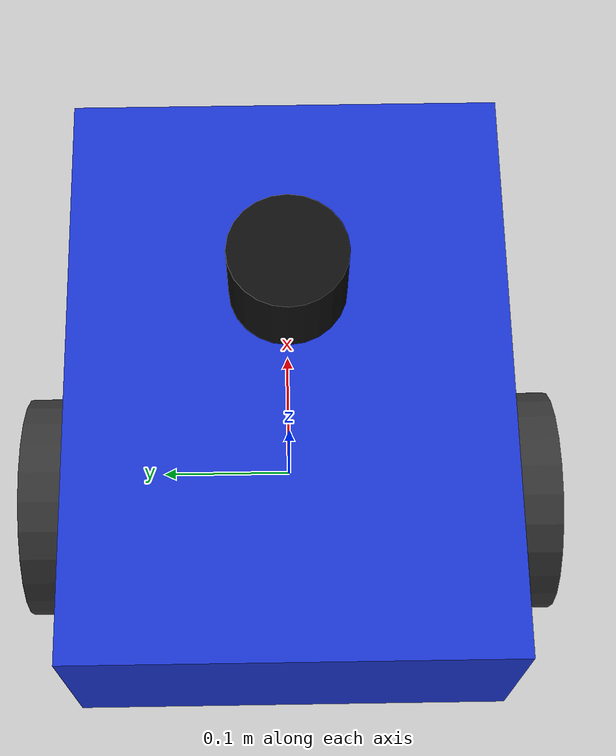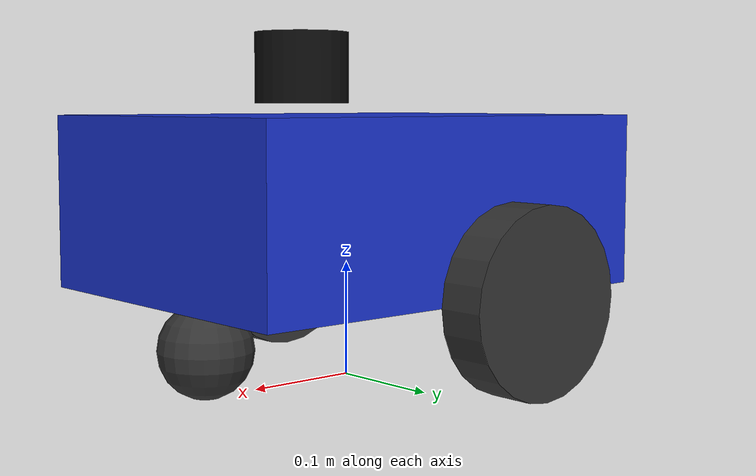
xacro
<?xml version="1.0"?>
<robot name="lidar_imu_bot" xmlns:xacro="http://www.ros.org/wiki/xacro">

  <xacro:include filename="$(find gazebo_lidar_imu_sim)/urdf/lidar.xacro"/>
  <xacro:include filename="$(find gazebo_lidar_imu_sim)/urdf/imu.xacro"/>

  <!-- ============ Properties ============ -->
  <xacro:property name="chassis_length" value="0.40"/>
  <xacro:property name="chassis_width" value="0.30"/>
  <xacro:property name="chassis_height" value="0.15"/>
  <xacro:property name="chassis_mass" value="8.0"/>

  <xacro:property name="wheel_radius" value="0.08"/>
  <xacro:property name="wheel_width" value="0.04"/>
  <xacro:property name="wheel_mass" value="0.6"/>
  <xacro:property name="wheel_separation" value="0.34"/>
  <xacro:property name="wheel_x_offset" value="-0.05"/>

  <xacro:property name="caster_radius" value="0.04"/>

  <!-- ============ base_footprint ============ -->
  <link name="base_footprint"/>

  <joint name="base_footprint_joint" type="fixed">
    <parent link="base_footprint"/>
    <child link="base_link"/>
    <origin xyz="0 0 ${wheel_radius}" rpy="0 0 0"/>
  </joint>

  <!-- ============ Chassis ============ -->
  <link name="base_link">
    <visual>
      <origin xyz="0 0 ${chassis_height/2}" rpy="0 0 0"/>
      <geometry>
        <box size="${chassis_length} ${chassis_width} ${chassis_height}"/>
      </geometry>
      <material name="blue">
        <color rgba="0.1 0.2 0.8 1"/>
      </material>
    </visual>
    <collision>
      <origin xyz="0 0 ${chassis_height/2}" rpy="0 0 0"/>
      <geometry>
        <box size="${chassis_length} ${chassis_width} ${chassis_height}"/>
      </geometry>
    </collision>
    <inertial>
      <origin xyz="0 0 ${chassis_height/2}" rpy="0 0 0"/>
      <mass value="${chassis_mass}"/>
      <inertia
        ixx="${(1/12) * chassis_mass * (chassis_width*chassis_width + chassis_height*chassis_height)}"
        iyy="${(1/12) * chassis_mass * (chassis_length*chassis_length + chassis_height*chassis_height)}"
        izz="${(1/12) * chassis_mass * (chassis_length*chassis_length + chassis_width*chassis_width)}"
        ixy="0" ixz="0" iyz="0"/>
    </inertial>
  </link>

  <gazebo reference="base_link">
    <material>Gazebo/Blue</material>
  </gazebo>

  <!-- ============ Wheels ============ -->
  <xacro:macro name="wheel" params="prefix reflect">
    <link name="${prefix}_wheel_link">
      <visual>
        <origin xyz="0 0 0" rpy="${pi/2} 0 0"/>
        <geometry>
          <cylinder radius="${wheel_radius}" length="${wheel_width}"/>
        </geometry>
        <material name="dark_grey">
          <color rgba="0.2 0.2 0.2 1"/>
        </material>
      </visual>
      <collision>
        <origin xyz="0 0 0" rpy="${pi/2} 0 0"/>
        <geometry>
          <cylinder radius="${wheel_radius}" length="${wheel_width}"/>
        </geometry>
      </collision>
      <inertial>
        <mass value="${wheel_mass}"/>
        <inertia
          ixx="${(1/12) * wheel_mass * (3*wheel_radius*wheel_radius + wheel_width*wheel_width)}"
          iyy="${(1/12) * wheel_mass * (3*wheel_radius*wheel_radius + wheel_width*wheel_width)}"
          izz="${0.5 * wheel_mass * wheel_radius * wheel_radius}"
          ixy="0" ixz="0" iyz="0"/>
      </inertial>
    </link>

    <joint name="${prefix}_wheel_joint" type="continuous">
      <parent link="base_link"/>
      <child link="${prefix}_wheel_link"/>
      <origin xyz="${wheel_x_offset} ${reflect * wheel_separation/2} 0" rpy="0 0 0"/>
      <axis xyz="0 1 0"/>
    </joint>

    <gazebo reference="${prefix}_wheel_link">
      <material>Gazebo/DarkGrey</material>
    </gazebo>
  </xacro:macro>

  <xacro:wheel prefix="left" reflect="1"/>
  <xacro:wheel prefix="right" reflect="-1"/>

  <!-- ============ Caster (passive, frictionless) ============ -->
  <link name="caster_link">
    <visual>
      <geometry>
        <sphere radius="${caster_radius}"/>
      </geometry>
      <material name="dark_grey"/>
    </visual>
    <collision>
      <geometry>
        <sphere radius="${caster_radius}"/>
      </geometry>
    </collision>
    <inertial>
      <mass value="0.2"/>
      <inertia ixx="0.0001" ixy="0" ixz="0" iyy="0.0001" iyz="0" izz="0.0001"/>
    </inertial>
  </link>

  <joint name="caster_joint" type="fixed">
    <parent link="base_link"/>
    <child link="caster_link"/>
    <origin xyz="0.15 0 ${caster_radius - wheel_radius}" rpy="0 0 0"/>
  </joint>

  <gazebo reference="caster_link">
    <mu1>0.0</mu1>
    <mu2>0.0</mu2>
  </gazebo>

  <!-- ============ Sensors ============ -->
  <xacro:lidar_3d parent="base_link" name="lidar" xyz="0.05 0 ${chassis_height + 0.04}" rpy="0 0 0"/>
  <xacro:imu_sensor parent="base_link" name="imu" xyz="0 0 ${chassis_height/2}" rpy="0 0 0"/>

  <!-- ============ Differential drive plugin ============ -->
  <gazebo>
    <plugin filename="ignition-gazebo-diff-drive-system" name="gz::sim::systems::DiffDrive">
      <left_joint>left_wheel_joint</left_joint>
      <right_joint>right_wheel_joint</right_joint>
      <wheel_separation>${wheel_separation}</wheel_separation>
      <wheel_radius>${wheel_radius}</wheel_radius>
      <odom_publish_frequency>50</odom_publish_frequency>
      <topic>cmd_vel</topic>
      <odom_topic>odom</odom_topic>
      <tf_topic>tf</tf_topic>
      <frame_id>odom</frame_id>
      <child_frame_id>base_footprint</child_frame_id>
    </plugin>

    <plugin filename="ignition-gazebo-joint-state-publisher-system" name="gz::sim::systems::JointStatePublisher">
      <topic>joint_states</topic>
    </plugin>
  </gazebo>

</robot>

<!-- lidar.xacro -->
<robot xmlns:xacro="http://www.ros.org/wiki/xacro">

  <xacro:macro name="lidar_3d" params="parent name:=lidar xyz:='0 0 0' rpy:='0 0 0'">

    <joint name="${name}_joint" type="fixed">
      <parent link="${parent}"/>
      <child link="${name}_link"/>
      <origin xyz="${xyz}" rpy="${rpy}"/>
    </joint>

    <link name="${name}_link">
      <visual>
        <geometry>
          <cylinder radius="0.04" length="0.06"/>
        </geometry>
        <material name="black">
          <color rgba="0.05 0.05 0.05 1"/>
        </material>
      </visual>
      <collision>
        <geometry>
          <cylinder radius="0.04" length="0.06"/>
        </geometry>
      </collision>
      <inertial>
        <mass value="0.2"/>
        <inertia ixx="0.0001" ixy="0" ixz="0" iyy="0.0001" iyz="0" izz="0.0001"/>
      </inertial>
    </link>

    <gazebo reference="${name}_link">
      <material>Gazebo/Black</material>
      <sensor name="${name}" type="gpu_lidar">
        <pose>0 0 0 0 0 0</pose>
        <topic>${name}</topic>
        <gz_frame_id>${name}_link</gz_frame_id>
        <update_rate>10</update_rate>
        <always_on>true</always_on>
        <visualize>true</visualize>
        <lidar>
          <scan>
            <horizontal>
              <samples>440</samples>
              <resolution>1</resolution>
              <min_angle>-3.141592653589793</min_angle>
              <max_angle>3.141592653589793</max_angle>
            </horizontal>
            <vertical>
              <samples>16</samples>
              <resolution>1</resolution>
              <min_angle>-0.2617993877991494</min_angle>
              <max_angle>0.2617993877991494</max_angle>
            </vertical>
          </scan>
          <range>
            <min>0.15</min>
            <max>100.0</max>
            <resolution>0.01</resolution>
          </range>
          <noise>
            <type>gaussian</type>
            <mean>0.0</mean>
            <stddev>0.01</stddev>
          </noise>
        </lidar>
      </sensor>
    </gazebo>

  </xacro:macro>
</robot>

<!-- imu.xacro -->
<robot xmlns:xacro="http://www.ros.org/wiki/xacro">

  <xacro:macro name="imu_sensor" params="parent name:=imu xyz:='0 0 0' rpy:='0 0 0'">

    <joint name="${name}_joint" type="fixed">
      <parent link="${parent}"/>
      <child link="${name}_link"/>
      <origin xyz="${xyz}" rpy="${rpy}"/>
    </joint>

    <link name="${name}_link">
      <visual>
        <geometry>
          <box size="0.02 0.02 0.01"/>
        </geometry>
        <material name="red">
          <color rgba="0.8 0.1 0.1 1"/>
        </material>
      </visual>
      <collision>
        <geometry>
          <box size="0.02 0.02 0.01"/>
        </geometry>
      </collision>
      <inertial>
        <mass value="0.05"/>
        <inertia ixx="0.00001" ixy="0" ixz="0" iyy="0.00001" iyz="0" izz="0.00001"/>
      </inertial>
    </link>

    <gazebo reference="${name}_link">
      <sensor name="${name}" type="imu">
        <pose>0 0 0 0 0 0</pose>
        <topic>${name}</topic>
        <gz_frame_id>${name}_link</gz_frame_id>
        <update_rate>100</update_rate>
        <always_on>true</always_on>
        <visualize>false</visualize>
        <imu>
          <angular_velocity>
            <x><noise type="gaussian"><mean>0.0</mean><stddev>0.0002</stddev></noise></x>
            <y><noise type="gaussian"><mean>0.0</mean><stddev>0.0002</stddev></noise></y>
            <z><noise type="gaussian"><mean>0.0</mean><stddev>0.0002</stddev></noise></z>
          </angular_velocity>
          <linear_acceleration>
            <x><noise type="gaussian"><mean>0.0</mean><stddev>0.017</stddev></noise></x>
            <y><noise type="gaussian"><mean>0.0</mean><stddev>0.017</stddev></noise></y>
            <z><noise type="gaussian"><mean>0.0</mean><stddev>0.017</stddev></noise></z>
          </linear_acceleration>
        </imu>
      </sensor>
    </gazebo>

  </xacro:macro>
</robot>
